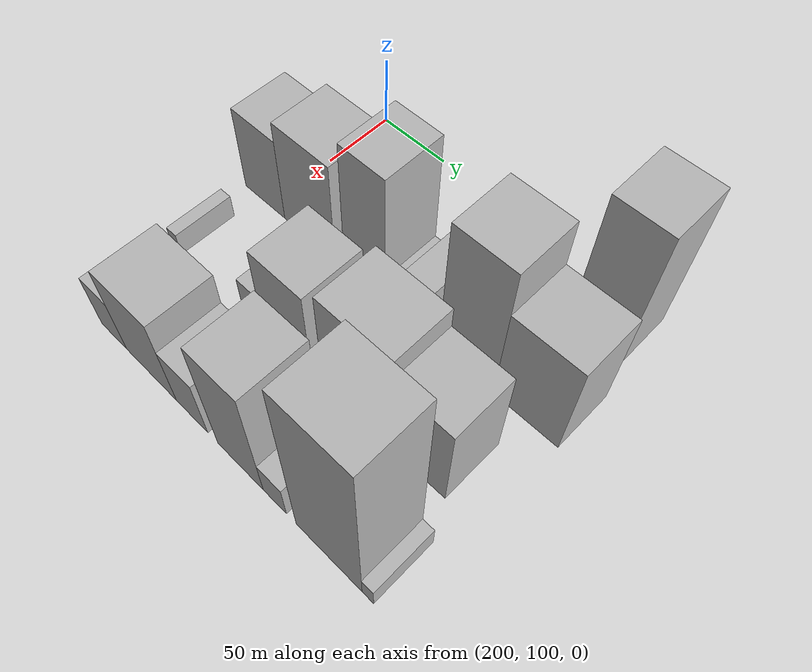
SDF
<sdf version="1.6">
 <world name="default">
  <model name="building_144">
   <static>1</static>
   <pose>220.0000 296.8147 0 0.000000 0.000000 0.000000</pose>
   <link name="link">
    <pose>0 0 57.00 0 0 0</pose>
    <collision name="collision"><geometry><box><size>40.0000 35.4057 114.0000</size></box></geometry></collision>
    <visual name="visual">
     <cast_shadows>0</cast_shadows>
     <geometry><box><size>40.0000 35.4057 114.0000</size></box></geometry>
     <material>
      <script>
       <uri>model://HANNAS_wall/materials/scripts</uri>
       <uri>model://HANNAS_wall/materials/textures</uri>
       <name>vrc/HANNAS_wall</name>
      </script>
     </material>
    </visual>
   </link>
  </model>
  <model name="building_191">
   <static>1</static>
   <pose>280.0000 95.2599 0 0.000000 0.000000 0.000000</pose>
   <link name="link">
    <pose>0 0 33.00 0 0 0</pose>
    <collision name="collision"><geometry><box><size>40.0000 35.6650 66.0000</size></box></geometry></collision>
    <visual name="visual">
     <cast_shadows>0</cast_shadows>
     <geometry><box><size>40.0000 35.6650 66.0000</size></box></geometry>
     <material>
      <script>
       <uri>model://HANNAS_wall/materials/scripts</uri>
       <uri>model://HANNAS_wall/materials/textures</uri>
       <name>vrc/HANNAS_wall</name>
      </script>
     </material>
    </visual>
   </link>
  </model>
  <model name="building_192">
   <static>1</static>
   <pose>280.0000 134.8960 0 0.000000 0.000000 0.000000</pose>
   <link name="link">
    <pose>0 0 40.50 0 0 0</pose>
    <collision name="collision"><geometry><box><size>40.0000 43.6071 81.0000</size></box></geometry></collision>
    <visual name="visual">
     <cast_shadows>0</cast_shadows>
     <geometry><box><size>40.0000 43.6071 81.0000</size></box></geometry>
     <material>
      <script>
       <uri>model://HANNAS_wall/materials/scripts</uri>
       <uri>model://HANNAS_wall/materials/textures</uri>
       <name>vrc/HANNAS_wall</name>
      </script>
     </material>
    </visual>
   </link>
  </model>
  <model name="building_193">
   <static>1</static>
   <pose>280.0000 180.9466 0 0.000000 0.000000 0.000000</pose>
   <link name="link">
    <pose>0 0 52.50 0 0 0</pose>
    <collision name="collision"><geometry><box><size>40.0000 32.4943 105.0000</size></box></geometry></collision>
    <visual name="visual">
     <cast_shadows>0</cast_shadows>
     <geometry><box><size>40.0000 32.4943 105.0000</size></box></geometry>
     <material>
      <script>
       <uri>model://HANNAS_wall/materials/scripts</uri>
       <uri>model://HANNAS_wall/materials/textures</uri>
       <name>vrc/HANNAS_wall</name>
      </script>
     </material>
    </visual>
   </link>
  </model>
  <model name="building_194">
   <static>1</static>
   <pose>280.0000 202.6793 0 0.000000 0.000000 0.000000</pose>
   <link name="link">
    <pose>0 0 12.00 0 0 0</pose>
    <collision name="collision"><geometry><box><size>40.0000 10.9711 24.0000</size></box></geometry></collision>
    <visual name="visual">
     <cast_shadows>0</cast_shadows>
     <geometry><box><size>40.0000 10.9711 24.0000</size></box></geometry>
     <material>
      <script>
       <uri>model://HANNAS_wall/materials/scripts</uri>
       <uri>model://HANNAS_wall/materials/textures</uri>
       <name>vrc/HANNAS_wall</name>
      </script>
     </material>
    </visual>
   </link>
  </model>
  <model name="building_195">
   <static>1</static>
   <pose>280.0000 218.5935 0 0.000000 0.000000 0.000000</pose>
   <link name="link">
    <pose>0 0 19.50 0 0 0</pose>
    <collision name="collision"><geometry><box><size>40.0000 20.8574 39.0000</size></box></geometry></collision>
    <visual name="visual">
     <cast_shadows>0</cast_shadows>
     <geometry><box><size>40.0000 20.8574 39.0000</size></box></geometry>
     <material>
      <script>
       <uri>model://HANNAS_wall/materials/scripts</uri>
       <uri>model://HANNAS_wall/materials/textures</uri>
       <name>vrc/HANNAS_wall</name>
      </script>
     </material>
    </visual>
   </link>
  </model>
  <model name="building_196">
   <static>1</static>
   <pose>280.0000 257.6896 0 0.000000 0.000000 0.000000</pose>
   <link name="link">
    <pose>0 0 55.50 0 0 0</pose>
    <collision name="collision"><geometry><box><size>40.0000 39.3348 111.0000</size></box></geometry></collision>
    <visual name="visual">
     <cast_shadows>0</cast_shadows>
     <geometry><box><size>40.0000 39.3348 111.0000</size></box></geometry>
     <material>
      <script>
       <uri>model://HANNAS_wall/materials/scripts</uri>
       <uri>model://HANNAS_wall/materials/textures</uri>
       <name>vrc/HANNAS_wall</name>
      </script>
     </material>
    </visual>
   </link>
  </model>
  <model name="building_197">
   <static>1</static>
   <pose>280.0000 299.0818 0 0.000000 0.000000 0.000000</pose>
   <link name="link">
    <pose>0 0 39.00 0 0 0</pose>
    <collision name="collision"><geometry><box><size>40.0000 43.4497 78.0000</size></box></geometry></collision>
    <visual name="visual">
     <cast_shadows>0</cast_shadows>
     <geometry><box><size>40.0000 43.4497 78.0000</size></box></geometry>
     <material>
      <script>
       <uri>model://HANNAS_wall/materials/scripts</uri>
       <uri>model://HANNAS_wall/materials/textures</uri>
       <name>vrc/HANNAS_wall</name>
      </script>
     </material>
    </visual>
   </link>
  </model>
  <model name="building_243">
   <static>1</static>
   <pose>340.0000 86.1375 0 0.000000 0.000000 0.000000</pose>
   <link name="link">
    <pose>0 0 9.00 0 0 0</pose>
    <collision name="collision"><geometry><box><size>40.0000 8.3512 18.0000</size></box></geometry></collision>
    <visual name="visual">
     <cast_shadows>0</cast_shadows>
     <geometry><box><size>40.0000 8.3512 18.0000</size></box></geometry>
     <material>
      <script>
       <uri>model://HANNAS_wall/materials/scripts</uri>
       <uri>model://HANNAS_wall/materials/textures</uri>
       <name>vrc/HANNAS_wall</name>
      </script>
     </material>
    </visual>
   </link>
  </model>
  <model name="building_244">
   <static>1</static>
   <pose>340.0000 154.7923 0 0.000000 0.000000 0.000000</pose>
   <link name="link">
    <pose>0 0 16.50 0 0 0</pose>
    <collision name="collision"><geometry><box><size>40.0000 16.9861 33.0000</size></box></geometry></collision>
    <visual name="visual">
     <cast_shadows>0</cast_shadows>
     <geometry><box><size>40.0000 16.9861 33.0000</size></box></geometry>
     <material>
      <script>
       <uri>model://HANNAS_wall/materials/scripts</uri>
       <uri>model://HANNAS_wall/materials/textures</uri>
       <name>vrc/HANNAS_wall</name>
      </script>
     </material>
    </visual>
   </link>
  </model>
  <model name="building_245">
   <static>1</static>
   <pose>340.0000 182.6213 0 0.000000 0.000000 0.000000</pose>
   <link name="link">
    <pose>0 0 37.50 0 0 0</pose>
    <collision name="collision"><geometry><box><size>40.0000 38.6718 75.0000</size></box></geometry></collision>
    <visual name="visual">
     <cast_shadows>0</cast_shadows>
     <geometry><box><size>40.0000 38.6718 75.0000</size></box></geometry>
     <material>
      <script>
       <uri>model://HANNAS_wall/materials/scripts</uri>
       <uri>model://HANNAS_wall/materials/textures</uri>
       <name>vrc/HANNAS_wall</name>
      </script>
     </material>
    </visual>
   </link>
  </model>
  <model name="building_246">
   <static>1</static>
   <pose>340.0000 235.3692 0 0.000000 0.000000 0.000000</pose>
   <link name="link">
    <pose>0 0 43.50 0 0 0</pose>
    <collision name="collision"><geometry><box><size>40.0000 48.8240 87.0000</size></box></geometry></collision>
    <visual name="visual">
     <cast_shadows>0</cast_shadows>
     <geometry><box><size>40.0000 48.8240 87.0000</size></box></geometry>
     <material>
      <script>
       <uri>model://HANNAS_wall/materials/scripts</uri>
       <uri>model://HANNAS_wall/materials/textures</uri>
       <name>vrc/HANNAS_wall</name>
      </script>
     </material>
    </visual>
   </link>
  </model>
  <model name="building_247">
   <static>1</static>
   <pose>340.0000 279.0189 0 0.000000 0.000000 0.000000</pose>
   <link name="link">
    <pose>0 0 36.00 0 0 0</pose>
    <collision name="collision"><geometry><box><size>40.0000 38.4754 72.0000</size></box></geometry></collision>
    <visual name="visual">
     <cast_shadows>0</cast_shadows>
     <geometry><box><size>40.0000 38.4754 72.0000</size></box></geometry>
     <material>
      <script>
       <uri>model://HANNAS_wall/materials/scripts</uri>
       <uri>model://HANNAS_wall/materials/textures</uri>
       <name>vrc/HANNAS_wall</name>
      </script>
     </material>
    </visual>
   </link>
  </model>
  <model name="building_295">
   <static>1</static>
   <pose>400.0000 107.7619 0 0.000000 0.000000 0.000000</pose>
   <link name="link">
    <pose>0 0 22.50 0 0 0</pose>
    <collision name="collision"><geometry><box><size>40.0000 22.9754 45.0000</size></box></geometry></collision>
    <visual name="visual">
     <cast_shadows>0</cast_shadows>
     <geometry><box><size>40.0000 22.9754 45.0000</size></box></geometry>
     <material>
      <script>
       <uri>model://HANNAS_wall/materials/scripts</uri>
       <uri>model://HANNAS_wall/materials/textures</uri>
       <name>vrc/HANNAS_wall</name>
      </script>
     </material>
    </visual>
   </link>
  </model>
  <model name="building_296">
   <static>1</static>
   <pose>400.0000 140.9582 0 0.000000 0.000000 0.000000</pose>
   <link name="link">
    <pose>0 0 37.50 0 0 0</pose>
    <collision name="collision"><geometry><box><size>40.0000 43.4170 75.0000</size></box></geometry></collision>
    <visual name="visual">
     <cast_shadows>0</cast_shadows>
     <geometry><box><size>40.0000 43.4170 75.0000</size></box></geometry>
     <material>
      <script>
       <uri>model://HANNAS_wall/materials/scripts</uri>
       <uri>model://HANNAS_wall/materials/textures</uri>
       <name>vrc/HANNAS_wall</name>
      </script>
     </material>
    </visual>
   </link>
  </model>
  <model name="building_297">
   <static>1</static>
   <pose>400.0000 175.6333 0 0.000000 0.000000 0.000000</pose>
   <link name="link">
    <pose>0 0 25.50 0 0 0</pose>
    <collision name="collision"><geometry><box><size>40.0000 25.9332 51.0000</size></box></geometry></collision>
    <visual name="visual">
     <cast_shadows>0</cast_shadows>
     <geometry><box><size>40.0000 25.9332 51.0000</size></box></geometry>
     <material>
      <script>
       <uri>model://HANNAS_wall/materials/scripts</uri>
       <uri>model://HANNAS_wall/materials/textures</uri>
       <name>vrc/HANNAS_wall</name>
      </script>
     </material>
    </visual>
   </link>
  </model>
  <model name="building_298">
   <static>1</static>
   <pose>400.0000 214.1607 0 0.000000 0.000000 0.000000</pose>
   <link name="link">
    <pose>0 0 49.50 0 0 0</pose>
    <collision name="collision"><geometry><box><size>40.0000 35.1215 99.0000</size></box></geometry></collision>
    <visual name="visual">
     <cast_shadows>0</cast_shadows>
     <geometry><box><size>40.0000 35.1215 99.0000</size></box></geometry>
     <material>
      <script>
       <uri>model://HANNAS_wall/materials/scripts</uri>
       <uri>model://HANNAS_wall/materials/textures</uri>
       <name>vrc/HANNAS_wall</name>
      </script>
     </material>
    </visual>
   </link>
  </model>
  <model name="building_299">
   <static>1</static>
   <pose>400.0000 240.2771 0 0.000000 0.000000 0.000000</pose>
   <link name="link">
    <pose>0 0 15.00 0 0 0</pose>
    <collision name="collision"><geometry><box><size>40.0000 17.1114 30.0000</size></box></geometry></collision>
    <visual name="visual">
     <cast_shadows>0</cast_shadows>
     <geometry><box><size>40.0000 17.1114 30.0000</size></box></geometry>
     <material>
      <script>
       <uri>model://HANNAS_wall/materials/scripts</uri>
       <uri>model://HANNAS_wall/materials/textures</uri>
       <name>vrc/HANNAS_wall</name>
      </script>
     </material>
    </visual>
   </link>
  </model>
  <model name="building_300">
   <static>1</static>
   <pose>400.0000 278.5464 0 0.000000 0.000000 0.000000</pose>
   <link name="link">
    <pose>0 0 72.00 0 0 0</pose>
    <collision name="collision"><geometry><box><size>40.0000 45.4270 144.0000</size></box></geometry></collision>
    <visual name="visual">
     <cast_shadows>0</cast_shadows>
     <geometry><box><size>40.0000 45.4270 144.0000</size></box></geometry>
     <material>
      <script>
       <uri>model://HANNAS_wall/materials/scripts</uri>
       <uri>model://HANNAS_wall/materials/textures</uri>
       <name>vrc/HANNAS_wall</name>
      </script>
     </material>
    </visual>
   </link>
  </model>
  <model name="building_301">
   <static>1</static>
   <pose>400.0000 305.0895 0 0.000000 0.000000 0.000000</pose>
   <link name="link">
    <pose>0 0 9.00 0 0 0</pose>
    <collision name="collision"><geometry><box><size>40.0000 7.6593 18.0000</size></box></geometry></collision>
    <visual name="visual">
     <cast_shadows>0</cast_shadows>
     <geometry><box><size>40.0000 7.6593 18.0000</size></box></geometry>
     <material>
      <script>
       <uri>model://HANNAS_wall/materials/scripts</uri>
       <uri>model://HANNAS_wall/materials/textures</uri>
       <name>vrc/HANNAS_wall</name>
      </script>
     </material>
    </visual>
   </link>
  </model>
 </world>
</sdf>
